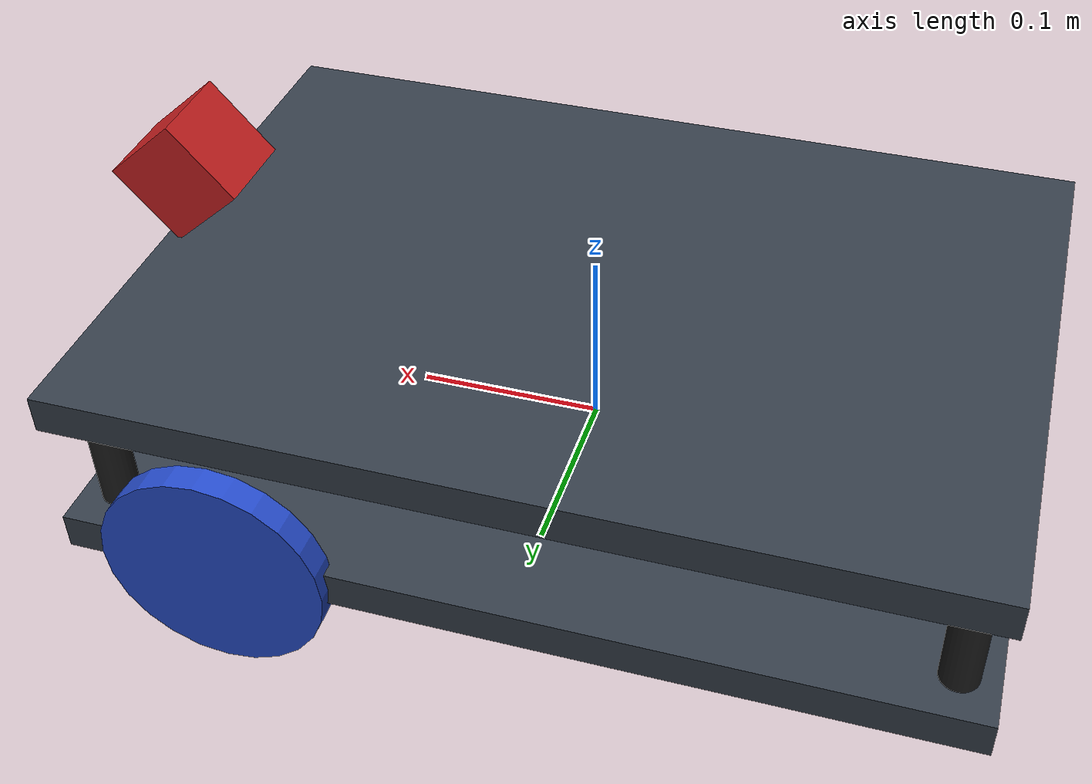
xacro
<?xml version="1.0" encoding="UTF-8"?>
<robot name="m2wr" xmlns:xacro="http://www.ros.org/wiki/xacro">
  <xacro:include filename="$(find myrob)/urdf/m2wr.gazebo" />
  <xacro:include
    filename="$(find myrob)/urdf/materials.xacro" />
  <xacro:include
    filename="$(find myrob)/urdf/macro.xacro" />

  <xacro:link_wheel name="link_right_wheel" />
  <xacro:joint_wheel
    name="joint_right_wheel" child="link_right_wheel" origin_xyz="0.15 -0.165 0" />

  <xacro:link_wheel
    name="link_left_wheel" />
  <xacro:joint_wheel name="joint_left_wheel" child="link_left_wheel"
    origin_xyz="0.15 0.165 0" />

  <!-- chassis_link -->

  <link name="link_chassis">

    <pose>0 0 0.1 0 0 0</pose>

    <inertial>
      <mass value="5" />
      <origin rpy="0 0 0" xyz="0 0 0" />
      <inertia ixx="0.0395416666667" ixy="0" ixz="0" iyy="0.106208333333" iyz="0"
        izz="0.106208333333" />
    </inertial>

    <collision name="collision_chassis">
      <geometry>
        <box size="0.47 0.33 0.02" />
      </geometry>
    </collision>

    <visual>
      <origin rpy="0 0 0" xyz="0 0 0" />
      <geometry>
        <box size="0.47 0.33 0.02" />
      </geometry>
      <material name="blue" />
    </visual>

    <collision name="cyl1_collision">
      <origin rpy="0 0 0" xyz="-0.215 -0.14 0.045" />
      <geometry>
        <cylinder length="0.07" radius="0.01" />
      </geometry>
    </collision>

    <visual name="cyl1_visual">
      <origin rpy="0 0 0" xyz="-0.215 -0.14 0.045" />
      <geometry>
        <cylinder length="0.07" radius="0.01" />
      </geometry>
    </visual>

    <collision name="cyl2_collision">
      <origin rpy="0 0 0" xyz="-0.215 0.14 0.045" />
      <geometry>
        <cylinder length="0.07" radius="0.01" />
      </geometry>
    </collision>

    <visual name="cyl2_visual">
      <origin rpy="0 0 0" xyz="-0.215 0.14 0.045" />
      <geometry>
        <cylinder length="0.07" radius="0.01" />
      </geometry>
    </visual>

    <collision name="cyl3_collision">
      <origin rpy="0 0 0" xyz="0.215 -0.14 0.045" />
      <geometry>
        <cylinder length="0.07" radius="0.01" />
      </geometry>
    </collision>

    <visual name="cyl3_visual">
      <origin rpy="0 0 0" xyz="0.215 -0.14 0.045" />
      <geometry>
        <cylinder length="0.07" radius="0.01" />
      </geometry>
    </visual>

    <collision name="cyl4_collision">
      <origin rpy="0 0 0" xyz="0.215 0.14 0.045" />
      <geometry>
        <cylinder length="0.07" radius="0.01" />
      </geometry>
    </collision>

    <visual name="cyl4_visual">
      <origin rpy="0 0 0" xyz="0.215 0.14 0.045" />
      <geometry>
        <cylinder length="0.07" radius="0.01" />
      </geometry>
    </visual>

    <collision name="collision_top_chassis">
      <geometry>
        <box size="0.47 0.33 0.02" />
      </geometry>
    </collision>

    <visual>
      <origin rpy="0 0 0" xyz="0 0 0.08" />
      <geometry>
        <box size="0.47 0.33 0.02" />
      </geometry>
      <material name="blue" />
    </visual>

  </link>

  <!-- caster_link -->
  <link
    name="caster_rear">
    <inertial>
      <mass value="0.2" />
      <origin rpy="0 1.5707 1.5707" xyz="0 0 0" />
      <inertia ixx="0.00052666666" ixy="0" ixz="0" iyy="0.00052666666" iyz="0" izz="0.001" />
    </inertial>
    <collision>
      <origin rpy="0 1.5707 1.5707" xyz="0 0 0" />
      <geometry>
        <cylinder length="0.03" radius="0.02" />
      </geometry>
      <surface>
        <friction>
          <ode>
            <mu>0</mu>
            <mu2>0</mu2>
            <slip1>1.0</slip1>
            <slip2>1.0</slip2>
          </ode>
        </friction>
      </surface>
    </collision>
    <visual>
      <origin rpy="0 1.5707 1.5707" xyz="0 0 0" />
      <geometry>
        <cylinder length="0.03" radius="0.02" />
      </geometry>
    </visual>
  </link>

  <!-- caster_joint -->

  <joint
    name="caster_rear_joint" type="revolute">
    <origin rpy="0 0 0" xyz="-0.15 0 -0.03" />
    <child link="caster_rear" />
    <parent link="link_chassis" />
    <axis
      rpy="0 0 0" xyz="0 0 1" />
       <!-- the kinematic constraintes of the caster wheel "as defined in the article" are pi/2 and -pi/2 -->
    <limit effort="1000" velocity="1000" upper="1.57" lower="-1.57" />
    <joint_properties
      damping="1.0" friction="1.0" />
  </joint>
  <transmission name="caster_rear_trans">
    <type>transmission_interface/SimpleTransmission</type>
    <joint name="caster_rear_joint">
      <hardwareInterface>PositionJointInterface</hardwareInterface>
    </joint>
    <actuator name="caster_rear_servo">
      <mechanicalReduction>1</mechanicalReduction>
      <hardwareInterface>PositionJointInterface</hardwareInterface>
    </actuator>
  </transmission>

  <xacro:property name="camera_link" value="0.05" />
  <link
    name="camera_link">
    <collision>
      <origin xyz="0 0 0" rpy="0 0 0" />
      <geometry>
        <box size="${camera_link} ${camera_link} ${camera_link}" />
      </geometry>
    </collision>

    <visual>
      <origin xyz="0 0 0" rpy="0 0 0" />
      <geometry>
        <box size="${camera_link} ${camera_link} ${camera_link}" />
      </geometry>
      <material name="red" />
    </visual>

    <inertial>
      <mass value="1e-5" />
      <origin xyz="0 0 0" rpy="0 0 0" />
      <inertia ixx="1e-6" ixy="0" ixz="0" iyy="1e-6" iyz="0" izz="1e-6" />
    </inertial>
  </link>
  <joint
    name="camera_joint" type="fixed">
    <axis xyz="0 1 0" />
    <origin xyz="0.225 0 0.124" rpy="0 0.72 0" />
    <parent link="link_chassis" />
    <child link="camera_link" />
  </joint>
</robot>

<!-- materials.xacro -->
<robot  name="m2wr" xmlns:xacro="http://www.ros.org/wiki/xacro">
    <material name="black">
        <color rgba="0.0 0.0 0.0 1.0"/>
      </material>
      <material name="blue">
        <color rgba="0.203125 0.23828125 0.28515625 1.0"/>
      </material>
      <material name="green">
        <color rgba="0.0 0.8 0.0 1.0"/>
      </material>
      <material name="grey">
        <color rgba="0.2 0.2 0.2 1.0"/>
      </material>
      <material name="orange">
        <color rgba="1.0 0.423529411765 0.0392156862745 1.0"/>
      </material>
      <material name="brown">
        <color rgba="0.870588235294 0.811764705882 0.764705882353 1.0"/>
      </material>
      <material name="red">
        <color rgba="0.80078125 0.12890625 0.1328125 1.0"/>
      </material>
      <material name="white">
        <color rgba="1.0 1.0 1.0 1.0"/>
      </material>

</robot>

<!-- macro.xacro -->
<robot name="m2wr" xmlns:xacro="http://www.ros.org/wiki/xacro"> > <xacro:macro name="link_wheel"
    params="name">
    <link name="${name}">
      <inertial>
        <mass value="0.2" />
        <origin rpy="0 1.5707 1.5707" xyz="0 0 0" />
        <inertia ixx="0.00052666666" ixy="0" ixz="0" iyy="0.00052666666" iyz="0" izz="0.001" />
      </inertial>

      <collision name="${name}_collision">
        <origin rpy="0 1.5707 1.5707" xyz="0 0 0" />
        <geometry>
          <cylinder length="0.015" radius="0.06" />
        </geometry>
      </collision>

      <visual name="${name}_visual">
        <origin rpy="0 1.5707 1.5707" xyz="0 0 0" />
        <geometry>
          <cylinder length="0.015" radius="0.06" />
        </geometry>
      </visual>

    </link>
  </xacro:macro>

    <xacro:macro
    name="joint_wheel" params="name child origin_xyz">
    <joint name="${name}" type="continuous">
      <origin rpy="0 0 0" xyz="${origin_xyz}" />
      <child link="${child}" />
      <parent link="link_chassis" />
      <axis rpy="0 0 0" xyz="0 1 0" />
      <limit effort="10000" velocity="1000" />
      <joint_properties damping="1.0" friction="1.0" />
    </joint>

  </xacro:macro>
</robot>
